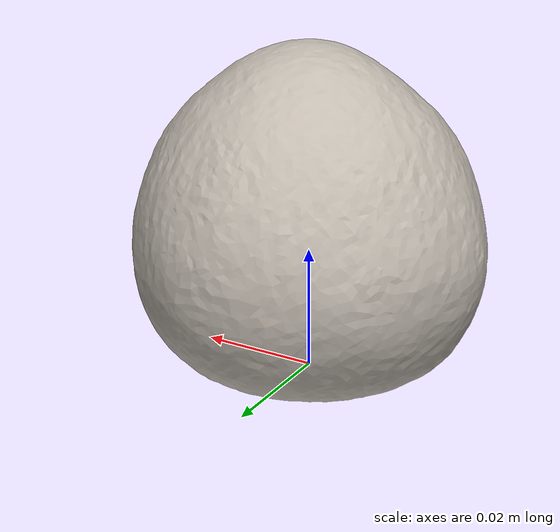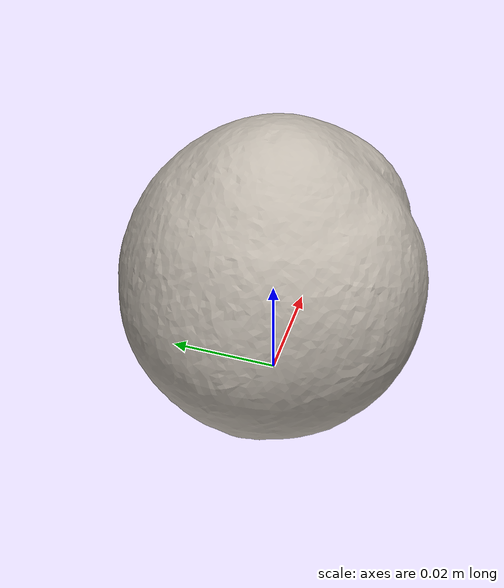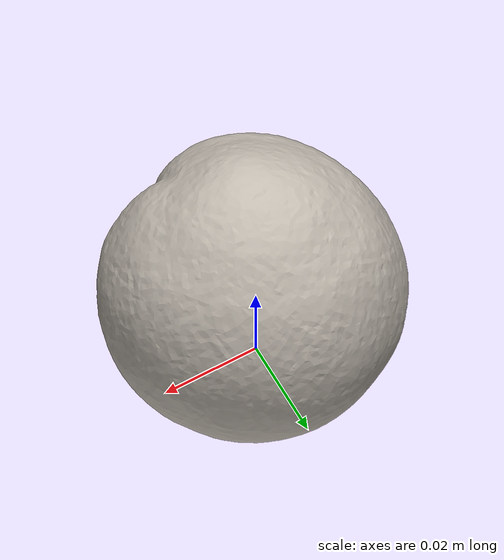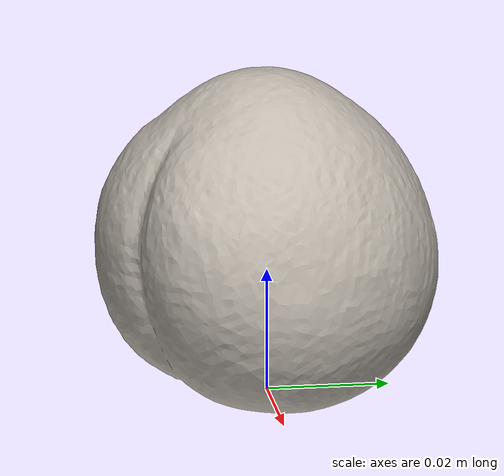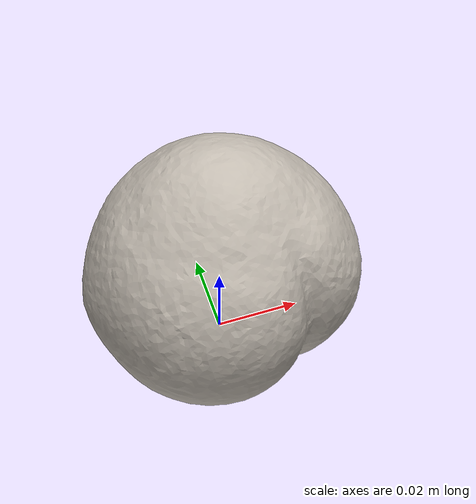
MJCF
<mujoco model="plum">
  <compiler angle="radian" meshdir="." texturedir="."/>
  <asset>
    <mesh name="plum_mesh" file="plum.obj" maxhullvert="64"/>
    <texture name="plum_tex" type="2d" file="plum.png"/>
    <material name="plum_mat" texture="plum_tex" specular="0.25" shininess="0.3"/>
  </asset>
  <worldbody>
    <body name="plum" pos="0 0 0">
      <inertial pos="7.53887e-05 6.87316e-05 0.0240173" quat="0.203621 0.612342 0.292053 0.70589" mass="0.07" diaginertia="2.20761e-05 2.12904e-05 2.03599e-05"/>
      <site name="plum_center" pos="0 0 0" size="0.005" rgba="0 0 0 0"/>
      <geom name="plum_vis0" type="mesh" mesh="plum_mesh" pos="0.007818 -0.0194235 0.000297001" material="plum_mat" group="2" contype="0" conaffinity="0"/>
      <geom name="plum_col1" type="mesh" mesh="plum_mesh" pos="0.007818 -0.0194235 0.000297001" rgba="0.5 0.5 0.5 0.3" group="3" condim="6" friction="1 0.02 0.004"/>
    </body>
  </worldbody>
</mujoco>
